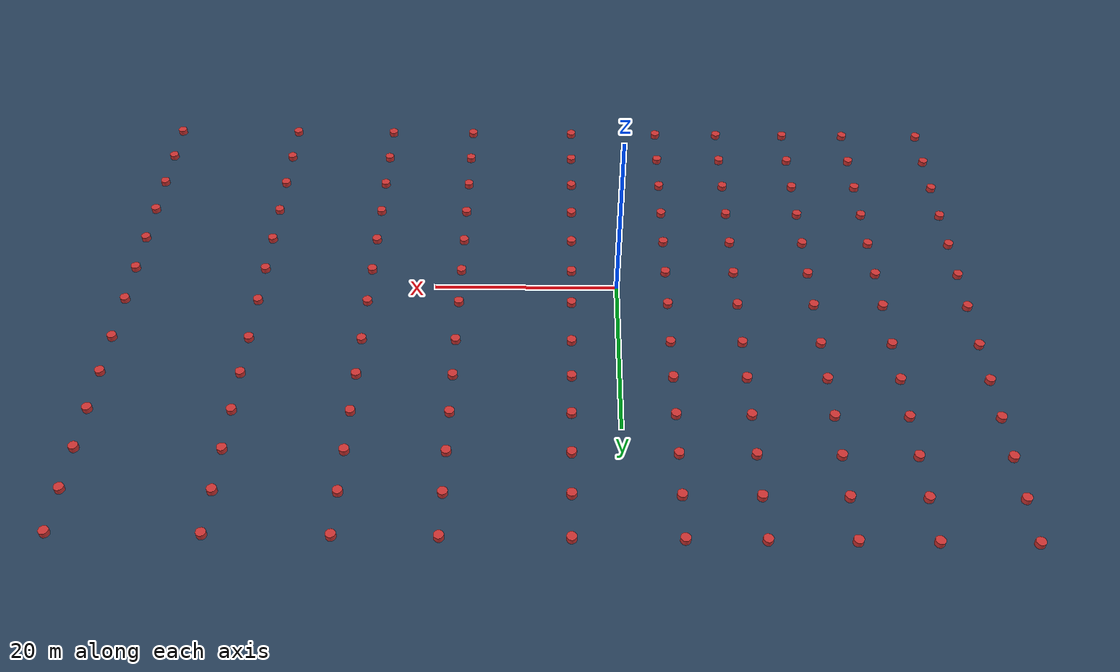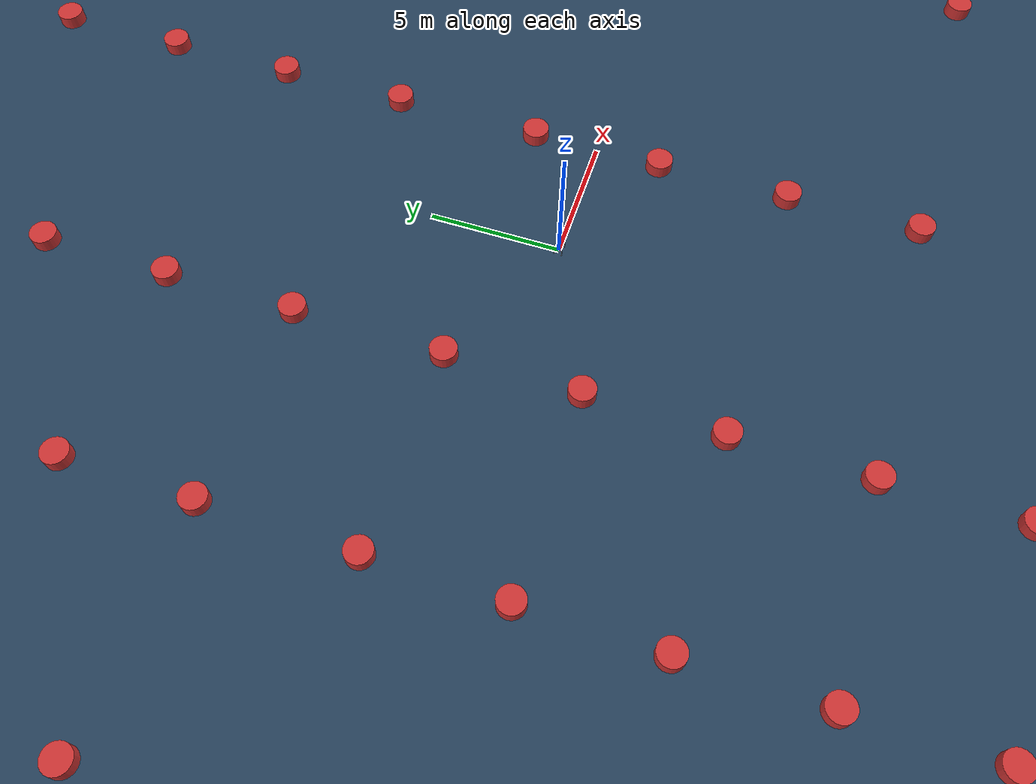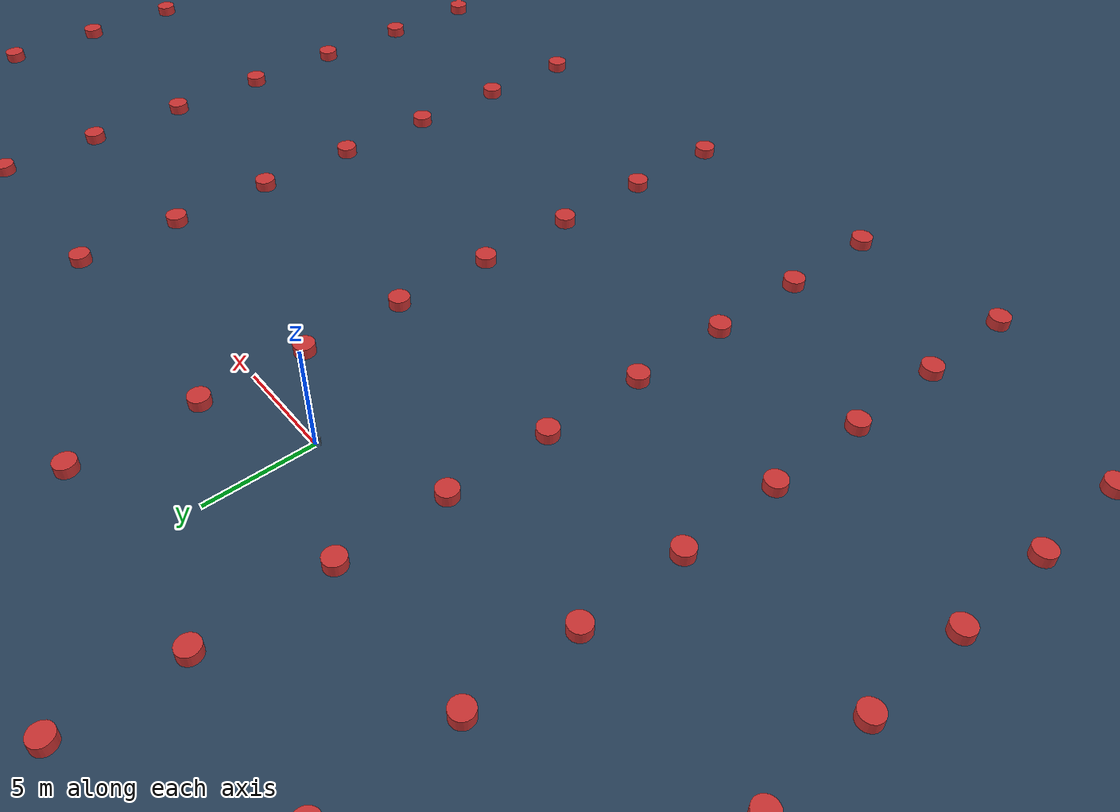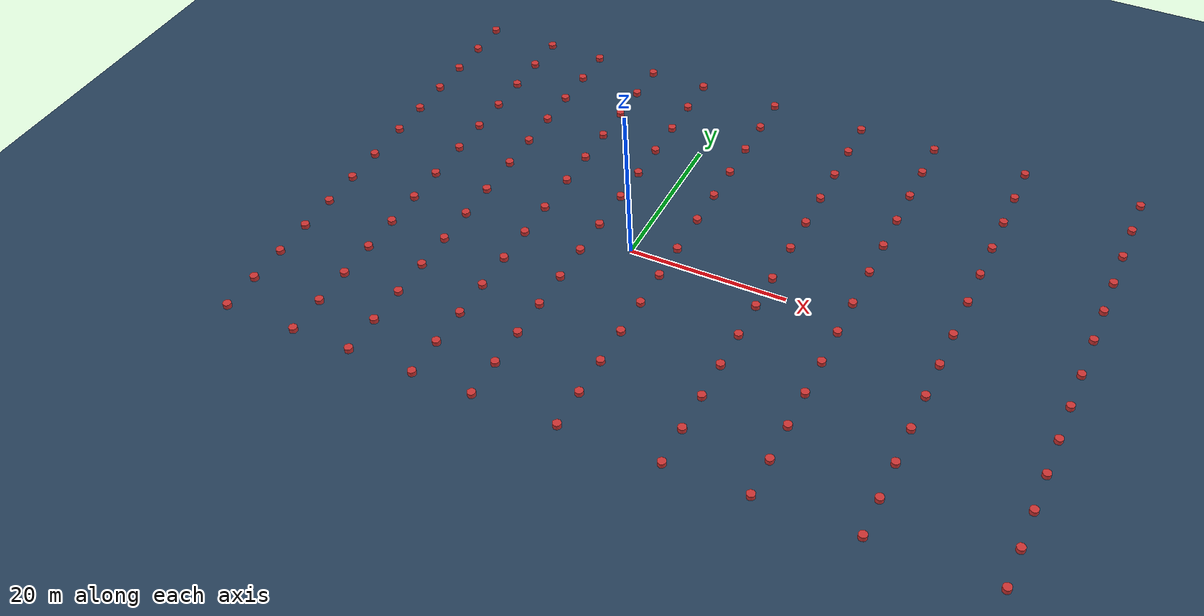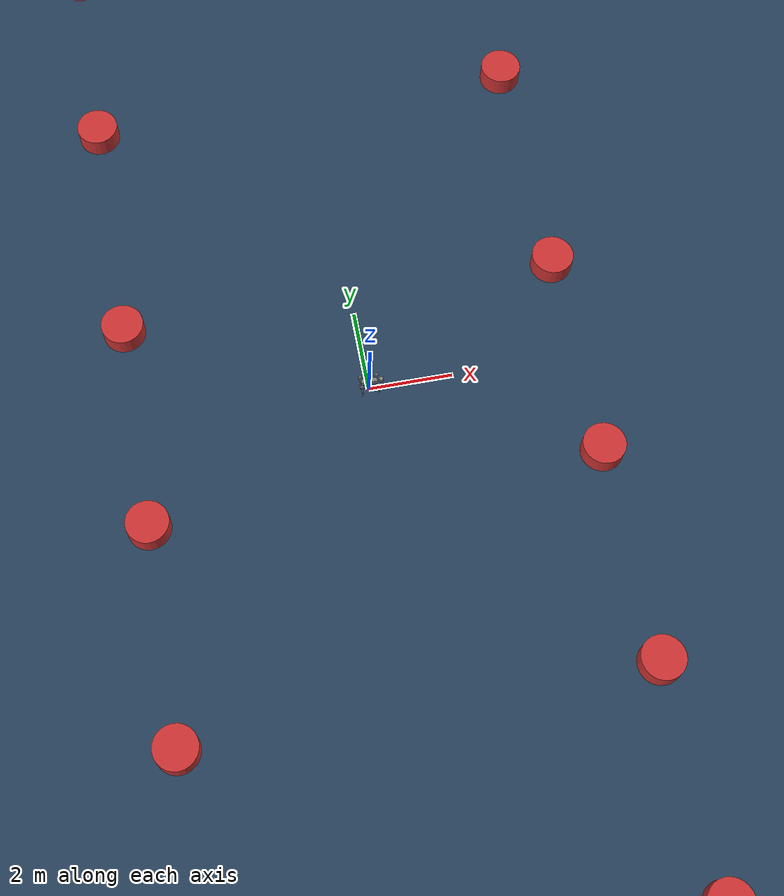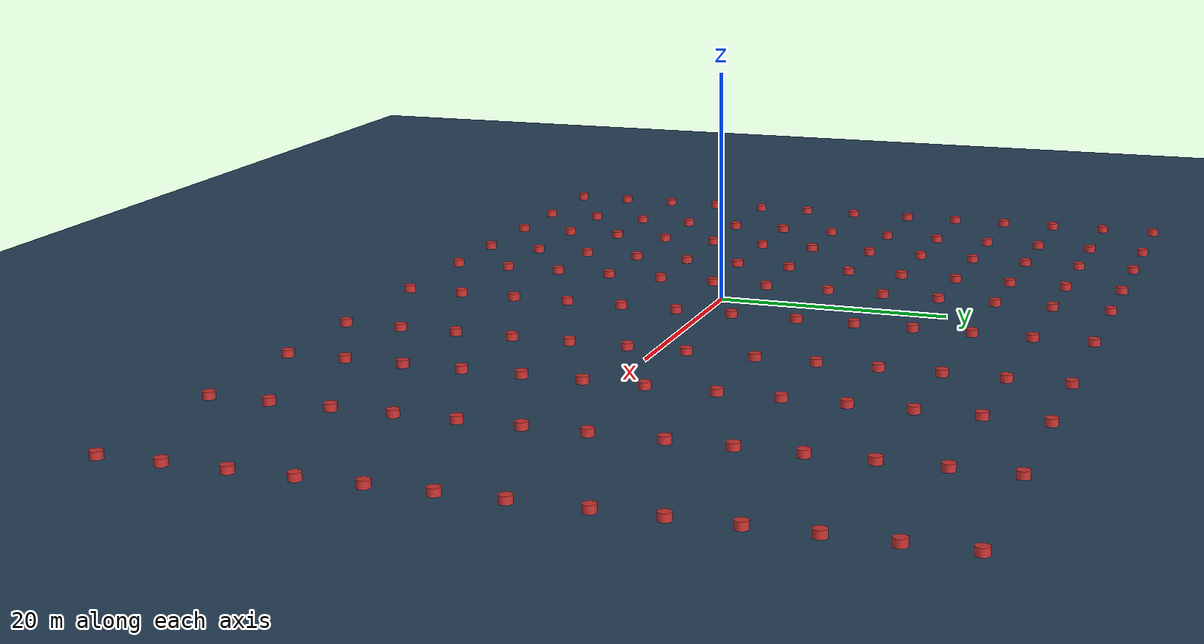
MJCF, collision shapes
<mujoco model="go2 scene">
  <include file="go2.xml" />

  <statistic center="0 0 0.1" extent="0.8" />

  <visual>
    <headlight diffuse="0.6 0.6 0.6" ambient="0.3 0.3 0.3" specular="0 0 0" />
    <rgba haze="0.15 0.25 0.35 1" />
    <global azimuth="-130" elevation="-20" />
    <map znear="0.01" zfar="100"/>
  </visual>

  <asset>
    <texture type="skybox" builtin="gradient" rgb1="0.3 0.5 0.7" rgb2="0 0 0" width="512" height="3072" />
    <texture type="2d" name="groundplane" builtin="checker" mark="edge" rgb1="0.2 0.3 0.4" rgb2="0.1 0.2 0.3" markrgb="0.8 0.8 0.8" width="300" height="300" />
    <material name="groundplane" texture="groundplane" texuniform="true" texrepeat="5 5" reflectance="0.2" />
  </asset>

  <worldbody>
    <light pos="0 0 1.5" dir="0 0 -1" directional="true" />
    <geom name="floor" pos="0 0.0 0.01" size="0 0 0.05" type="plane" material="groundplane" />
    <geom name="Cylinder0"  type="cylinder" size="0.5 0.5" pos="5.0 -2.5 0.0" rgba="0.8 0.2 0.2 1"/>
    <geom name="Cylinder1"  type="cylinder" size="0.5 0.5" pos="5.0 2.5 0.0" rgba="0.8 0.2 0.2 1"/>
    <geom name="Cylinder2"  type="cylinder" size="0.5 0.5" pos="5.0 -7.5 0.0" rgba="0.8 0.2 0.2 1"/>
    <geom name="Cylinder3"  type="cylinder" size="0.5 0.5" pos="5.0 -12.5 0.0" rgba="0.8 0.2 0.2 1"/>
    <geom name="Cylinder4"  type="cylinder" size="0.5 0.5" pos="5.0 -17.5 0.0" rgba="0.8 0.2 0.2 1"/>
    <geom name="Cylinder5"  type="cylinder" size="0.5 0.5" pos="5.0 -22.5 0.0" rgba="0.8 0.2 0.2 1"/>
    <geom name="Cylinder6"  type="cylinder" size="0.5 0.5" pos="5.0 -27.5 0.0" rgba="0.8 0.2 0.2 1"/>
    <geom name="Cylinder7"  type="cylinder" size="0.5 0.5" pos="5.0 33.2 0.0" rgba="0.8 0.2 0.2 1"/>
    <geom name="Cylinder8"  type="cylinder" size="0.5 0.5" pos="5.0 28.2 0.0" rgba="0.8 0.2 0.2 1"/>
    <geom name="Cylinder9"  type="cylinder" size="0.5 0.5" pos="5.0 23.2 0.0" rgba="0.8 0.2 0.2 1"/>
    <geom name="Cylinder10"  type="cylinder" size="0.5 0.5" pos="5.0 18.2 0.0" rgba="0.8 0.2 0.2 1"/>
    <geom name="Cylinder11"  type="cylinder" size="0.5 0.5" pos="5.0 13.2 0.0" rgba="0.8 0.2 0.2 1"/>
    <geom name="Cylinder12"  type="cylinder" size="0.5 0.5" pos="5.0 8.2 0.0" rgba="0.8 0.2 0.2 1"/>
    <geom name="Cylinder13"  type="cylinder" size="0.5 0.5" pos="-5.5 -2.5 0.0" rgba="0.8 0.2 0.2 1"/>
    <geom name="Cylinder14"  type="cylinder" size="0.5 0.5" pos="-5.5 2.5 0.0" rgba="0.8 0.2 0.2 1"/>
    <geom name="Cylinder15"  type="cylinder" size="0.5 0.5" pos="-5.5 -7.5 0.0" rgba="0.8 0.2 0.2 1"/>
    <geom name="Cylinder16"  type="cylinder" size="0.5 0.5" pos="-5.5 -12.5 0.0" rgba="0.8 0.2 0.2 1"/>
    <geom name="Cylinder17"  type="cylinder" size="0.5 0.5" pos="-5.5 -17.5 0.0" rgba="0.8 0.2 0.2 1"/>
    <geom name="Cylinder18"  type="cylinder" size="0.5 0.5" pos="-5.5 -22.5 0.0" rgba="0.8 0.2 0.2 1"/>
    <geom name="Cylinder19"  type="cylinder" size="0.5 0.5" pos="-5.5 -27.5 0.0" rgba="0.8 0.2 0.2 1"/>
    <geom name="Cylinder20"  type="cylinder" size="0.5 0.5" pos="-5.5 33.2 0.0" rgba="0.8 0.2 0.2 1"/>
    <geom name="Cylinder21"  type="cylinder" size="0.5 0.5" pos="-5.5 28.2 0.0" rgba="0.8 0.2 0.2 1"/>
    <geom name="Cylinder22"  type="cylinder" size="0.5 0.5" pos="-5.5 23.2 0.0" rgba="0.8 0.2 0.2 1"/>
    <geom name="Cylinder23"  type="cylinder" size="0.5 0.5" pos="-5.5 18.2 0.0" rgba="0.8 0.2 0.2 1"/>
    <geom name="Cylinder24"  type="cylinder" size="0.5 0.5" pos="-5.5 13.2 0.0" rgba="0.8 0.2 0.2 1"/>
    <geom name="Cylinder25"  type="cylinder" size="0.5 0.5" pos="-5.5 8.2 0.0" rgba="0.8 0.2 0.2 1"/>
    <geom name="Cylinder26"  type="cylinder" size="0.5 0.5" pos="-13.1 -2.5 0.0" rgba="0.8 0.2 0.2 1"/>
    <geom name="Cylinder27"  type="cylinder" size="0.5 0.5" pos="-13.1 2.5 0.0" rgba="0.8 0.2 0.2 1"/>
    <geom name="Cylinder28"  type="cylinder" size="0.5 0.5" pos="-13.1 -7.5 0.0" rgba="0.8 0.2 0.2 1"/>
    <geom name="Cylinder29"  type="cylinder" size="0.5 0.5" pos="-13.1 -12.5 0.0" rgba="0.8 0.2 0.2 1"/>
    <geom name="Cylinder30"  type="cylinder" size="0.5 0.5" pos="-13.1 -17.5 0.0" rgba="0.8 0.2 0.2 1"/>
    <geom name="Cylinder31"  type="cylinder" size="0.5 0.5" pos="-13.1 -22.5 0.0" rgba="0.8 0.2 0.2 1"/>
    <geom name="Cylinder32"  type="cylinder" size="0.5 0.5" pos="-13.1 -27.5 0.0" rgba="0.8 0.2 0.2 1"/>
    <geom name="Cylinder33"  type="cylinder" size="0.5 0.5" pos="-13.1 33.2 0.0" rgba="0.8 0.2 0.2 1"/>
    <geom name="Cylinder34"  type="cylinder" size="0.5 0.5" pos="-13.1 28.2 0.0" rgba="0.8 0.2 0.2 1"/>
    <geom name="Cylinder35"  type="cylinder" size="0.5 0.5" pos="-13.1 23.2 0.0" rgba="0.8 0.2 0.2 1"/>
    <geom name="Cylinder36"  type="cylinder" size="0.5 0.5" pos="-13.1 18.2 0.0" rgba="0.8 0.2 0.2 1"/>
    <geom name="Cylinder37"  type="cylinder" size="0.5 0.5" pos="-13.1 13.2 0.0" rgba="0.8 0.2 0.2 1"/>
    <geom name="Cylinder38"  type="cylinder" size="0.5 0.5" pos="-13.1 8.2 0.0" rgba="0.8 0.2 0.2 1"/>
    <geom name="Cylinder39"  type="cylinder" size="0.5 0.5" pos="-21.4 -2.5 0.0" rgba="0.8 0.2 0.2 1"/>
    <geom name="Cylinder40"  type="cylinder" size="0.5 0.5" pos="-21.4 2.5 0.0" rgba="0.8 0.2 0.2 1"/>
    <geom name="Cylinder41"  type="cylinder" size="0.5 0.5" pos="-21.4 -7.5 0.0" rgba="0.8 0.2 0.2 1"/>
    <geom name="Cylinder42"  type="cylinder" size="0.5 0.5" pos="-21.4 -12.5 0.0" rgba="0.8 0.2 0.2 1"/>
    <geom name="Cylinder43"  type="cylinder" size="0.5 0.5" pos="-21.4 -17.5 0.0" rgba="0.8 0.2 0.2 1"/>
    <geom name="Cylinder44"  type="cylinder" size="0.5 0.5" pos="-21.4 -22.5 0.0" rgba="0.8 0.2 0.2 1"/>
    <geom name="Cylinder45"  type="cylinder" size="0.5 0.5" pos="-21.4 -27.5 0.0" rgba="0.8 0.2 0.2 1"/>
    <geom name="Cylinder46"  type="cylinder" size="0.5 0.5" pos="-21.4 33.2 0.0" rgba="0.8 0.2 0.2 1"/>
    <geom name="Cylinder47"  type="cylinder" size="0.5 0.5" pos="-21.4 28.2 0.0" rgba="0.8 0.2 0.2 1"/>
    <geom name="Cylinder48"  type="cylinder" size="0.5 0.5" pos="-21.4 23.2 0.0" rgba="0.8 0.2 0.2 1"/>
    <geom name="Cylinder49"  type="cylinder" size="0.5 0.5" pos="-21.4 18.2 0.0" rgba="0.8 0.2 0.2 1"/>
    <geom name="Cylinder50"  type="cylinder" size="0.5 0.5" pos="-21.4 13.2 0.0" rgba="0.8 0.2 0.2 1"/>
    <geom name="Cylinder51"  type="cylinder" size="0.5 0.5" pos="-21.4 8.2 0.0" rgba="0.8 0.2 0.2 1"/>
    <geom name="Cylinder52"  type="cylinder" size="0.5 0.5" pos="-28.9 -2.5 0.0" rgba="0.8 0.2 0.2 1"/>
    <geom name="Cylinder53"  type="cylinder" size="0.5 0.5" pos="-28.9 2.5 0.0" rgba="0.8 0.2 0.2 1"/>
    <geom name="Cylinder54"  type="cylinder" size="0.5 0.5" pos="-28.9 -7.5 0.0" rgba="0.8 0.2 0.2 1"/>
    <geom name="Cylinder55"  type="cylinder" size="0.5 0.5" pos="-28.9 -12.5 0.0" rgba="0.8 0.2 0.2 1"/>
    <geom name="Cylinder56"  type="cylinder" size="0.5 0.5" pos="-28.9 -17.5 0.0" rgba="0.8 0.2 0.2 1"/>
    <geom name="Cylinder57"  type="cylinder" size="0.5 0.5" pos="-28.9 -22.5 0.0" rgba="0.8 0.2 0.2 1"/>
    <geom name="Cylinder58"  type="cylinder" size="0.5 0.5" pos="-28.9 -27.5 0.0" rgba="0.8 0.2 0.2 1"/>
    <geom name="Cylinder59"  type="cylinder" size="0.5 0.5" pos="-28.9 33.2 0.0" rgba="0.8 0.2 0.2 1"/>
    <geom name="Cylinder60"  type="cylinder" size="0.5 0.5" pos="-28.9 28.2 0.0" rgba="0.8 0.2 0.2 1"/>
    <geom name="Cylinder61"  type="cylinder" size="0.5 0.5" pos="-28.9 23.2 0.0" rgba="0.8 0.2 0.2 1"/>
    <geom name="Cylinder62"  type="cylinder" size="0.5 0.5" pos="-28.9 18.2 0.0" rgba="0.8 0.2 0.2 1"/>
    <geom name="Cylinder63"  type="cylinder" size="0.5 0.5" pos="-28.9 13.2 0.0" rgba="0.8 0.2 0.2 1"/>
    <geom name="Cylinder64"  type="cylinder" size="0.5 0.5" pos="-28.9 8.2 0.0" rgba="0.8 0.2 0.2 1"/>
    <geom name="Cylinder65"  type="cylinder" size="0.5 0.5" pos="-38.1 -2.5 0.0" rgba="0.8 0.2 0.2 1"/>
    <geom name="Cylinder66"  type="cylinder" size="0.5 0.5" pos="-38.1 2.5 0.0" rgba="0.8 0.2 0.2 1"/>
    <geom name="Cylinder67"  type="cylinder" size="0.5 0.5" pos="-38.1 -7.5 0.0" rgba="0.8 0.2 0.2 1"/>
    <geom name="Cylinder68"  type="cylinder" size="0.5 0.5" pos="-38.1 -12.5 0.0" rgba="0.8 0.2 0.2 1"/>
    <geom name="Cylinder69"  type="cylinder" size="0.5 0.5" pos="-38.1 -17.5 0.0" rgba="0.8 0.2 0.2 1"/>
    <geom name="Cylinder70"  type="cylinder" size="0.5 0.5" pos="-38.1 -22.5 0.0" rgba="0.8 0.2 0.2 1"/>
    <geom name="Cylinder71"  type="cylinder" size="0.5 0.5" pos="-38.1 -27.5 0.0" rgba="0.8 0.2 0.2 1"/>
    <geom name="Cylinder72"  type="cylinder" size="0.5 0.5" pos="-38.1 33.2 0.0" rgba="0.8 0.2 0.2 1"/>
    <geom name="Cylinder73"  type="cylinder" size="0.5 0.5" pos="-38.1 28.2 0.0" rgba="0.8 0.2 0.2 1"/>
    <geom name="Cylinder74"  type="cylinder" size="0.5 0.5" pos="-38.1 23.2 0.0" rgba="0.8 0.2 0.2 1"/>
    <geom name="Cylinder75"  type="cylinder" size="0.5 0.5" pos="-38.1 18.2 0.0" rgba="0.8 0.2 0.2 1"/>
    <geom name="Cylinder76"  type="cylinder" size="0.5 0.5" pos="-38.1 13.2 0.0" rgba="0.8 0.2 0.2 1"/>
    <geom name="Cylinder77"  type="cylinder" size="0.5 0.5" pos="-38.1 8.2 0.0" rgba="0.8 0.2 0.2 1"/>
    <geom name="Cylinder78"  type="cylinder" size="0.5 0.5" pos="17.3 -2.5 0.0" rgba="0.8 0.2 0.2 1"/>
    <geom name="Cylinder79"  type="cylinder" size="0.5 0.5" pos="17.3 2.5 0.0" rgba="0.8 0.2 0.2 1"/>
    <geom name="Cylinder80"  type="cylinder" size="0.5 0.5" pos="17.3 -7.5 0.0" rgba="0.8 0.2 0.2 1"/>
    <geom name="Cylinder81"  type="cylinder" size="0.5 0.5" pos="17.3 -12.5 0.0" rgba="0.8 0.2 0.2 1"/>
    <geom name="Cylinder82"  type="cylinder" size="0.5 0.5" pos="17.3 -17.5 0.0" rgba="0.8 0.2 0.2 1"/>
    <geom name="Cylinder83"  type="cylinder" size="0.5 0.5" pos="17.3 -22.5 0.0" rgba="0.8 0.2 0.2 1"/>
    <geom name="Cylinder84"  type="cylinder" size="0.5 0.5" pos="17.3 -27.5 0.0" rgba="0.8 0.2 0.2 1"/>
    <geom name="Cylinder85"  type="cylinder" size="0.5 0.5" pos="17.3 33.2 0.0" rgba="0.8 0.2 0.2 1"/>
    <geom name="Cylinder86"  type="cylinder" size="0.5 0.5" pos="17.3 28.2 0.0" rgba="0.8 0.2 0.2 1"/>
    <geom name="Cylinder87"  type="cylinder" size="0.5 0.5" pos="17.3 23.2 0.0" rgba="0.8 0.2 0.2 1"/>
    <geom name="Cylinder88"  type="cylinder" size="0.5 0.5" pos="17.3 18.2 0.0" rgba="0.8 0.2 0.2 1"/>
    <geom name="Cylinder89"  type="cylinder" size="0.5 0.5" pos="17.3 13.2 0.0" rgba="0.8 0.2 0.2 1"/>
    <geom name="Cylinder90"  type="cylinder" size="0.5 0.5" pos="17.3 8.2 0.0" rgba="0.8 0.2 0.2 1"/>
    <geom name="Cylinder91"  type="cylinder" size="0.5 0.5" pos="27.3 -2.5 0.0" rgba="0.8 0.2 0.2 1"/>
    <geom name="Cylinder92"  type="cylinder" size="0.5 0.5" pos="27.3 2.5 0.0" rgba="0.8 0.2 0.2 1"/>
    <geom name="Cylinder93"  type="cylinder" size="0.5 0.5" pos="27.3 -7.5 0.0" rgba="0.8 0.2 0.2 1"/>
    <geom name="Cylinder94"  type="cylinder" size="0.5 0.5" pos="27.3 -12.5 0.0" rgba="0.8 0.2 0.2 1"/>
    <geom name="Cylinder95"  type="cylinder" size="0.5 0.5" pos="27.3 -17.5 0.0" rgba="0.8 0.2 0.2 1"/>
    <geom name="Cylinder96"  type="cylinder" size="0.5 0.5" pos="27.3 -22.5 0.0" rgba="0.8 0.2 0.2 1"/>
    <geom name="Cylinder97"  type="cylinder" size="0.5 0.5" pos="27.3 -27.5 0.0" rgba="0.8 0.2 0.2 1"/>
    <geom name="Cylinder98"  type="cylinder" size="0.5 0.5" pos="27.3 33.2 0.0" rgba="0.8 0.2 0.2 1"/>
    <geom name="Cylinder99"  type="cylinder" size="0.5 0.5" pos="27.3 28.2 0.0" rgba="0.8 0.2 0.2 1"/>
    <geom name="Cylinder100"  type="cylinder" size="0.5 0.5" pos="27.3 23.2 0.0" rgba="0.8 0.2 0.2 1"/>
    <geom name="Cylinder101"  type="cylinder" size="0.5 0.5" pos="27.3 18.2 0.0" rgba="0.8 0.2 0.2 1"/>
    <geom name="Cylinder102"  type="cylinder" size="0.5 0.5" pos="27.3 13.2 0.0" rgba="0.8 0.2 0.2 1"/>
    <geom name="Cylinder103"  type="cylinder" size="0.5 0.5" pos="27.3 8.2 0.0" rgba="0.8 0.2 0.2 1"/>
    <geom name="Cylinder104"  type="cylinder" size="0.5 0.5" pos="39.3 -2.5 0.0" rgba="0.8 0.2 0.2 1"/>
    <geom name="Cylinder105"  type="cylinder" size="0.5 0.5" pos="39.3 2.5 0.0" rgba="0.8 0.2 0.2 1"/>
    <geom name="Cylinder106"  type="cylinder" size="0.5 0.5" pos="39.3 -7.5 0.0" rgba="0.8 0.2 0.2 1"/>
    <geom name="Cylinder107"  type="cylinder" size="0.5 0.5" pos="39.3 -12.5 0.0" rgba="0.8 0.2 0.2 1"/>
    <geom name="Cylinder108"  type="cylinder" size="0.5 0.5" pos="39.3 -17.5 0.0" rgba="0.8 0.2 0.2 1"/>
    <geom name="Cylinder109"  type="cylinder" size="0.5 0.5" pos="39.3 -22.5 0.0" rgba="0.8 0.2 0.2 1"/>
    <geom name="Cylinder110"  type="cylinder" size="0.5 0.5" pos="39.3 -27.5 0.0" rgba="0.8 0.2 0.2 1"/>
    <geom name="Cylinder111"  type="cylinder" size="0.5 0.5" pos="39.3 33.2 0.0" rgba="0.8 0.2 0.2 1"/>
    <geom name="Cylinder112"  type="cylinder" size="0.5 0.5" pos="39.3 28.2 0.0" rgba="0.8 0.2 0.2 1"/>
    <geom name="Cylinder113"  type="cylinder" size="0.5 0.5" pos="39.3 23.2 0.0" rgba="0.8 0.2 0.2 1"/>
    <geom name="Cylinder114"  type="cylinder" size="0.5 0.5" pos="39.3 18.2 0.0" rgba="0.8 0.2 0.2 1"/>
    <geom name="Cylinder115"  type="cylinder" size="0.5 0.5" pos="39.3 13.2 0.0" rgba="0.8 0.2 0.2 1"/>
    <geom name="Cylinder116"  type="cylinder" size="0.5 0.5" pos="39.3 8.2 0.0" rgba="0.8 0.2 0.2 1"/>
    <geom name="Cylinder117"  type="cylinder" size="0.5 0.5" pos="53.9 -2.5 0.0" rgba="0.8 0.2 0.2 1"/>
    <geom name="Cylinder118"  type="cylinder" size="0.5 0.5" pos="53.9 2.5 0.0" rgba="0.8 0.2 0.2 1"/>
    <geom name="Cylinder119"  type="cylinder" size="0.5 0.5" pos="53.9 -7.5 0.0" rgba="0.8 0.2 0.2 1"/>
    <geom name="Cylinder120"  type="cylinder" size="0.5 0.5" pos="53.9 -12.5 0.0" rgba="0.8 0.2 0.2 1"/>
    <geom name="Cylinder121"  type="cylinder" size="0.5 0.5" pos="53.9 -17.5 0.0" rgba="0.8 0.2 0.2 1"/>
    <geom name="Cylinder122"  type="cylinder" size="0.5 0.5" pos="53.9 -22.5 0.0" rgba="0.8 0.2 0.2 1"/>
    <geom name="Cylinder123"  type="cylinder" size="0.5 0.5" pos="53.9 -27.5 0.0" rgba="0.8 0.2 0.2 1"/>
    <geom name="Cylinder124"  type="cylinder" size="0.5 0.5" pos="53.9 33.2 0.0" rgba="0.8 0.2 0.2 1"/>
    <geom name="Cylinder125"  type="cylinder" size="0.5 0.5" pos="53.9 28.2 0.0" rgba="0.8 0.2 0.2 1"/>
    <geom name="Cylinder126"  type="cylinder" size="0.5 0.5" pos="53.9 23.2 0.0" rgba="0.8 0.2 0.2 1"/>
    <geom name="Cylinder127"  type="cylinder" size="0.5 0.5" pos="53.9 18.2 0.0" rgba="0.8 0.2 0.2 1"/>
    <geom name="Cylinder128"  type="cylinder" size="0.5 0.5" pos="53.9 13.2 0.0" rgba="0.8 0.2 0.2 1"/>
    <geom name="Cylinder129"  type="cylinder" size="0.5 0.5" pos="53.9 8.2 0.0" rgba="0.8 0.2 0.2 1"/>
  </worldbody>
</mujoco>

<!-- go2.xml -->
<mujoco model="go2">
  <compiler angle="radian" meshdir="assets" autolimits="true" />

  <option cone="elliptic" impratio="100" />

  <default>
    <default class="go2">
      <geom friction="0.4" margin="0.001" condim="1"/>
      <joint axis="0 1 0" damping="0.1" armature="0.01" frictionloss="0.2"/>
      <motor ctrlrange="-23.7 23.7"/>
      <default class="abduction">
        <joint axis="1 0 0" range="-1.0472 1.0472"/>
      </default>
      <default class="hip">
        <default class="front_hip">
          <joint range="-1.5708 3.4907"/>
        </default>
        <default class="back_hip">
          <joint range="-0.5236 4.5379"/>
        </default>
      </default>
      <default class="knee">
        <joint range="-2.7227 -0.83776"/>
        <motor ctrlrange="-45.43 45.43"/>
      </default>
      <default class="visual">
        <geom type="mesh" contype="0" conaffinity="0" group="2"/>
      </default>
      <default class="collision">
        <geom group="3"/>
        <default class="foot">
          <geom size="0.022" pos="-0.002 0 -0.213" priority="1" condim="6"
            friction="0.4 0.02 0.01"/>
        </default>
      </default>
    </default>
  </default>

  <asset>
    <material name="metal" rgba=".9 .95 .95 1" />
    <material name="black" rgba="0 0 0 1" />
    <material name="white" rgba="1 1 1 1" />
    <material name="gray" rgba="0.671705 0.692426 0.774270 1" />

    <mesh file="base_0.obj" />
    <mesh file="base_1.obj" />
    <mesh file="base_2.obj" />
    <mesh file="base_3.obj" />
    <mesh file="base_4.obj" />
    <mesh file="hip_0.obj" />
    <mesh file="hip_1.obj" />
    <mesh file="thigh_0.obj" />
    <mesh file="thigh_1.obj" />
    <mesh file="thigh_mirror_0.obj" />
    <mesh file="thigh_mirror_1.obj" />
    <mesh file="calf_0.obj" />
    <mesh file="calf_1.obj" />
    <mesh file="calf_mirror_0.obj" />
    <mesh file="calf_mirror_1.obj" />
    <mesh file="foot.obj" />
  </asset>

  <worldbody>
    <body name="base_link" pos="0 0 0.445" childclass="go2">
      <inertial pos="0.021112 0 -0.005366" quat="-0.000543471 0.713435 -0.00173769 0.700719"
        mass="6.921"
        diaginertia="0.107027 0.0980771 0.0244531" />
      <freejoint />
      <geom mesh="base_0" material="black" class="visual" />
      <geom mesh="base_1" material="black" class="visual" />
      <geom mesh="base_2" material="black" class="visual" />
      <geom mesh="base_3" material="white" class="visual" />
      <geom mesh="base_4" material="gray" class="visual" />
      <geom size="0.1881 0.04675 0.057" type="box" class="collision" />
      <geom size="0.05 0.045" pos="0.285 0 0.01" type="cylinder" class="collision" />
      <geom size="0.047" pos="0.293 0 -0.06" class="collision" />
      <site name="imu" pos="-0.02557 0 0.04232" />

      <body name="FL_hip" pos="0.1934 0.0465 0">
        <inertial pos="-0.0054 0.00194 -0.000105" quat="0.497014 0.499245 0.505462 0.498237"
          mass="0.678"
          diaginertia="0.00088403 0.000596003 0.000479967" />
        <joint name="FL_hip_joint" class="abduction" />
        <geom mesh="hip_0" material="metal" class="visual" />
        <geom mesh="hip_1" material="gray" class="visual" />
        <geom size="0.046 0.02" pos="0 0.08 0" quat="1 1 0 0" type="cylinder" class="collision" />
        <body name="FL_thigh" pos="0 0.0955 0">
          <inertial pos="-0.00374 -0.0223 -0.0327" quat="0.829533 0.0847635 -0.0200632 0.551623"
            mass="1.152"
            diaginertia="0.00594973 0.00584149 0.000878787" />
          <joint name="FL_thigh_joint" class="front_hip" />
          <geom mesh="thigh_0" material="metal" class="visual" />
          <geom mesh="thigh_1" material="gray" class="visual" />
          <geom size="0.1065 0.01225 0.017" pos="0 0 -0.1065" quat="0.707107 0 0.707107 0"
            type="box" class="collision" />
          <body name="FL_calf" pos="0 0 -0.213">
            <inertial pos="0.00629595 -0.000622121 -0.141417"
              quat="0.710672 0.00154099 -0.00450087 0.703508"
              mass="0.241352" diaginertia="0.0014901 0.00146356 5.31397e-05" />
            <joint name="FL_calf_joint" class="knee" />
            <geom mesh="calf_0" material="gray" class="visual" />
            <geom mesh="calf_1" material="black" class="visual" />
            <geom size="0.012 0.06" pos="0.008 0 -0.06" quat="0.994493 0 -0.104807 0"
              type="cylinder" class="collision" />
            <geom size="0.011 0.0325" pos="0.02 0 -0.148" quat="0.999688 0 0.0249974 0"
              type="cylinder" class="collision" />
            <geom pos="0 0 -0.213" mesh="foot" class="visual" material="black" />
            <geom name="FL" class="foot" />
            <body name="FL_foot" pos="0 0 -0.213" />
          </body>
        </body>
      </body>
      <body name="FR_hip" pos="0.1934 -0.0465 0">
        <inertial pos="-0.0054 -0.00194 -0.000105" quat="0.498237 0.505462 0.499245 0.497014"
          mass="0.678"
          diaginertia="0.00088403 0.000596003 0.000479967" />
        <joint name="FR_hip_joint" class="abduction" />
        <geom mesh="hip_0" material="metal" class="visual" quat="4.63268e-05 1 0 0" />
        <geom mesh="hip_1" material="gray" class="visual" quat="4.63268e-05 1 0 0" />
        <geom size="0.046 0.02" pos="0 -0.08 0" quat="0.707107 0.707107 0 0" type="cylinder"
          class="collision" />
        <body name="FR_thigh" pos="0 -0.0955 0">
          <inertial pos="-0.00374 0.0223 -0.0327" quat="0.551623 -0.0200632 0.0847635 0.829533"
            mass="1.152"
            diaginertia="0.00594973 0.00584149 0.000878787" />
          <joint name="FR_thigh_joint" class="front_hip" />
          <geom mesh="thigh_mirror_0" material="metal" class="visual" />
          <geom mesh="thigh_mirror_1" material="gray" class="visual" />
          <geom size="0.1065 0.01225 0.017" pos="0 0 -0.1065" quat="0.707107 0 0.707107 0"
            type="box" class="collision" />
          <body name="FR_calf" pos="0 0 -0.213">
            <inertial pos="0.00629595 0.000622121 -0.141417"
              quat="0.703508 -0.00450087 0.00154099 0.710672"
              mass="0.241352" diaginertia="0.0014901 0.00146356 5.31397e-05" />
            <joint name="FR_calf_joint" class="knee" />
            <geom mesh="calf_mirror_0" material="gray" class="visual" />
            <geom mesh="calf_mirror_1" material="black" class="visual" />
            <geom size="0.013 0.06" pos="0.01 0 -0.06" quat="0.995004 0 -0.0998334 0"
              type="cylinder" class="collision" />
            <geom size="0.011 0.0325" pos="0.02 0 -0.148" quat="0.999688 0 0.0249974 0"
              type="cylinder" class="collision" />
            <geom pos="0 0 -0.213" mesh="foot" class="visual" material="black" />
            <geom name="FR" class="foot" />
            <body name="FR_foot" pos="0 0 -0.213" />
          </body>
        </body>
      </body>
      <body name="RL_hip" pos="-0.1934 0.0465 0">
        <inertial pos="0.0054 0.00194 -0.000105" quat="0.505462 0.498237 0.497014 0.499245"
          mass="0.678"
          diaginertia="0.00088403 0.000596003 0.000479967" />
        <joint name="RL_hip_joint" class="abduction" />
        <geom mesh="hip_0" material="metal" class="visual" quat="4.63268e-05 0 1 0" />
        <geom mesh="hip_1" material="gray" class="visual" quat="4.63268e-05 0 1 0" />
        <geom size="0.046 0.02" pos="0 0.08 0" quat="0.707107 0.707107 0 0" type="cylinder"
          class="collision" />
        <body name="RL_thigh" pos="0 0.0955 0">
          <inertial pos="-0.00374 -0.0223 -0.0327" quat="0.829533 0.0847635 -0.0200632 0.551623"
            mass="1.152"
            diaginertia="0.00594973 0.00584149 0.000878787" />
          <joint name="RL_thigh_joint" class="back_hip" />
          <geom mesh="thigh_0" material="metal" class="visual" />
          <geom mesh="thigh_1" material="gray" class="visual" />
          <geom size="0.1065 0.01225 0.017" pos="0 0 -0.1065" quat="0.707107 0 0.707107 0"
            type="box" class="collision" />
          <body name="RL_calf" pos="0 0 -0.213">
            <inertial pos="0.00629595 -0.000622121 -0.141417"
              quat="0.710672 0.00154099 -0.00450087 0.703508"
              mass="0.241352" diaginertia="0.0014901 0.00146356 5.31397e-05" />
            <joint name="RL_calf_joint" class="knee" />
            <geom mesh="calf_0" material="gray" class="visual" />
            <geom mesh="calf_1" material="black" class="visual" />
            <geom size="0.013 0.06" pos="0.01 0 -0.06" quat="0.995004 0 -0.0998334 0"
              type="cylinder" class="collision" />
            <geom size="0.011 0.0325" pos="0.02 0 -0.148" quat="0.999688 0 0.0249974 0"
              type="cylinder" class="collision" />
            <geom pos="0 0 -0.213" mesh="foot" class="visual" material="black" />
            <geom name="RL" class="foot" />
            <body name="RL_foot" pos="0 0 -0.213" />
          </body>
        </body>
      </body>
      <body name="RR_hip" pos="-0.1934 -0.0465 0">
        <inertial pos="0.0054 -0.00194 -0.000105" quat="0.499245 0.497014 0.498237 0.505462"
          mass="0.678"
          diaginertia="0.00088403 0.000596003 0.000479967" />
        <joint name="RR_hip_joint" class="abduction" />
        <geom mesh="hip_0" material="metal" class="visual"
          quat="2.14617e-09 4.63268e-05 4.63268e-05 -1" />
        <geom mesh="hip_1" material="gray" class="visual"
          quat="2.14617e-09 4.63268e-05 4.63268e-05 -1" />
        <geom size="0.046 0.02" pos="0 -0.08 0" quat="0.707107 0.707107 0 0" type="cylinder"
          class="collision" />
        <body name="RR_thigh" pos="0 -0.0955 0">
          <inertial pos="-0.00374 0.0223 -0.0327" quat="0.551623 -0.0200632 0.0847635 0.829533"
            mass="1.152"
            diaginertia="0.00594973 0.00584149 0.000878787" />
          <joint name="RR_thigh_joint" class="back_hip" />
          <geom mesh="thigh_mirror_0" material="metal" class="visual" />
          <geom mesh="thigh_mirror_1" material="gray" class="visual" />
          <geom size="0.1065 0.01225 0.017" pos="0 0 -0.1065" quat="0.707107 0 0.707107 0"
            type="box" class="collision" />
          <body name="RR_calf" pos="0 0 -0.213">
            <inertial pos="0.00629595 0.000622121 -0.141417"
              quat="0.703508 -0.00450087 0.00154099 0.710672"
              mass="0.241352" diaginertia="0.0014901 0.00146356 5.31397e-05" />
            <joint name="RR_calf_joint" class="knee" />
            <geom mesh="calf_mirror_0" material="gray" class="visual" />
            <geom mesh="calf_mirror_1" material="black" class="visual" />
            <geom size="0.013 0.06" pos="0.01 0 -0.06" quat="0.995004 0 -0.0998334 0"
              type="cylinder" class="collision" />
            <geom size="0.011 0.0325" pos="0.02 0 -0.148" quat="0.999688 0 0.0249974 0"
              type="cylinder" class="collision" />
            <geom pos="0 0 -0.213" mesh="foot" class="visual" material="black" />
            <geom name="RR" class="foot" />
            <body name="RR_foot" pos="0 0 -0.213" />
          </body>
        </body>
      </body>
    </body>
  </worldbody>

  <actuator>
    <motor class="abduction" name="FR_hip" joint="FR_hip_joint" />
    <motor class="hip" name="FR_thigh" joint="FR_thigh_joint" />
    <motor class="knee" name="FR_calf" joint="FR_calf_joint" />
    <motor class="abduction" name="FL_hip" joint="FL_hip_joint" />
    <motor class="hip" name="FL_thigh" joint="FL_thigh_joint" />
    <motor class="knee" name="FL_calf" joint="FL_calf_joint" />
    <motor class="abduction" name="RR_hip" joint="RR_hip_joint" />
    <motor class="hip" name="RR_thigh" joint="RR_thigh_joint" />
    <motor class="knee" name="RR_calf" joint="RR_calf_joint" />
    <motor class="abduction" name="RL_hip" joint="RL_hip_joint" />
    <motor class="hip" name="RL_thigh" joint="RL_thigh_joint" />
    <motor class="knee" name="RL_calf" joint="RL_calf_joint" />
  </actuator>

  <sensor>
    <jointpos name="FR_hip_pos" joint="FR_hip_joint" />
    <jointpos name="FR_thigh_pos" joint="FR_thigh_joint" />
    <jointpos name="FR_calf_pos" joint="FR_calf_joint" />
    <jointpos name="FL_hip_pos" joint="FL_hip_joint" />
    <jointpos name="FL_thigh_pos" joint="FL_thigh_joint" />
    <jointpos name="FL_calf_pos" joint="FL_calf_joint" />
    <jointpos name="RR_hip_pos" joint="RR_hip_joint" />
    <jointpos name="RR_thigh_pos" joint="RR_thigh_joint" />
    <jointpos name="RR_calf_pos" joint="RR_calf_joint" />
    <jointpos name="RL_hip_pos" joint="RL_hip_joint" />
    <jointpos name="RL_thigh_pos" joint="RL_thigh_joint" />
    <jointpos name="RL_calf_pos" joint="RL_calf_joint" />

    <jointvel name="FR_hip_vel" joint="FR_hip_joint" />
    <jointvel name="FR_thigh_vel" joint="FR_thigh_joint" />
    <jointvel name="FR_calf_vel" joint="FR_calf_joint" />
    <jointvel name="FL_hip_vel" joint="FL_hip_joint" />
    <jointvel name="FL_thigh_vel" joint="FL_thigh_joint" />
    <jointvel name="FL_calf_vel" joint="FL_calf_joint" />
    <jointvel name="RR_hip_vel" joint="RR_hip_joint" />
    <jointvel name="RR_thigh_vel" joint="RR_thigh_joint" />
    <jointvel name="RR_calf_vel" joint="RR_calf_joint" />
    <jointvel name="RL_hip_vel" joint="RL_hip_joint" />
    <jointvel name="RL_thigh_vel" joint="RL_thigh_joint" />
    <jointvel name="RL_calf_vel" joint="RL_calf_joint" />

    <jointactuatorfrc name="FR_hip_torque" joint="FR_hip_joint" noise="0.01" />
    <jointactuatorfrc name="FR_thigh_torque" joint="FR_thigh_joint" noise="0.01" />
    <jointactuatorfrc name="FR_calf_torque" joint="FR_calf_joint" noise="0.01" />
    <jointactuatorfrc name="FL_hip_torque" joint="FL_hip_joint" noise="0.01" />
    <jointactuatorfrc name="FL_thigh_torque" joint="FL_thigh_joint" noise="0.01" />
    <jointactuatorfrc name="FL_calf_torque" joint="FL_calf_joint" noise="0.01" />
    <jointactuatorfrc name="RR_hip_torque" joint="RR_hip_joint" noise="0.01" />
    <jointactuatorfrc name="RR_thigh_torque" joint="RR_thigh_joint" noise="0.01" />
    <jointactuatorfrc name="RR_calf_torque" joint="RR_calf_joint" noise="0.01" />
    <jointactuatorfrc name="RL_hip_torque" joint="RL_hip_joint" noise="0.01" />
    <jointactuatorfrc name="RL_thigh_torque" joint="RL_thigh_joint" noise="0.01" />
    <jointactuatorfrc name="RL_calf_torque" joint="RL_calf_joint" noise="0.01" />

    <framequat name="imu_quat" objtype="site" objname="imu" />
    <gyro name="imu_gyro" site="imu" />
    <accelerometer name="imu_acc" site="imu" />

    <framepos name="frame_pos" objtype="site" objname="imu" />
    <framelinvel name="frame_vel" objtype="site" objname="imu" />
  </sensor>

  <keyframe>
    <key name="home" qpos="0 0 0.27 1 0 0 0 0 0.9 -1.8 0 0.9 -1.8 0 0.9 -1.8 0 0.9 -1.8"
      ctrl="0 0.9 -1.8 0 0.9 -1.8 0 0.9 -1.8 0 0.9 -1.8" />
  </keyframe>
</mujoco>
